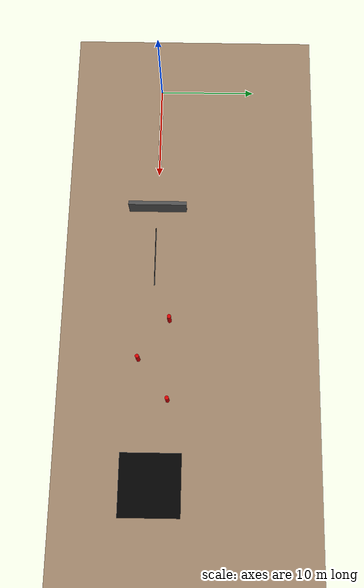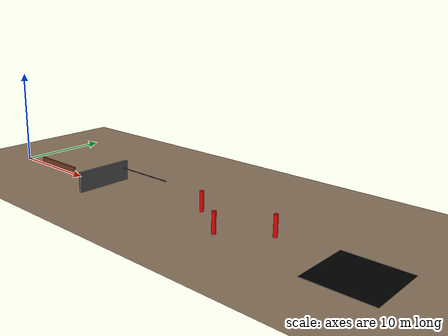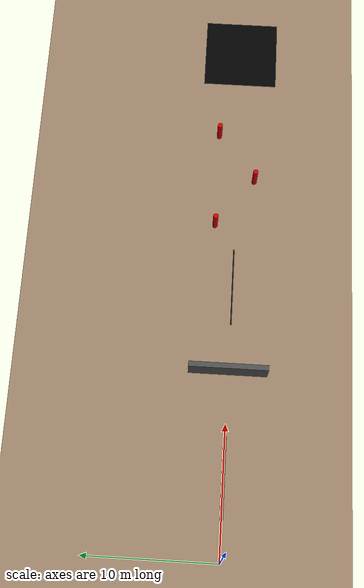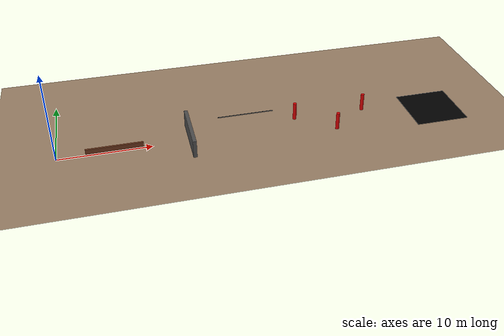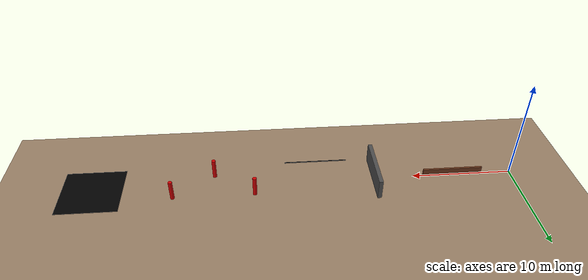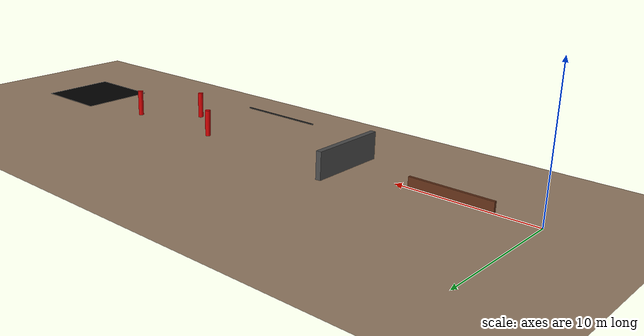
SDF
<sdf version="1.8">
 <world name="monde_binome">
  <physics name="4ms" type="ignored">
   <max_step_size>0.004</max_step_size>
   <real_time_factor>1.0</real_time_factor>
  </physics>
  <plugin filename="gz-sim-physics-system" name="gz::sim::systems::Physics"/>
  <plugin filename="gz-sim-user-commands-system" name="gz::sim::systems::UserCommands"/>
  <plugin filename="gz-sim-scene-broadcaster-system" name="gz::sim::systems::SceneBroadcaster"/>
  <plugin filename="gz-sim-sensors-system" name="gz::sim::systems::Sensors">
   <render_engine>ogre</render_engine>
  </plugin>
  <light type="directional" name="sun">
   <cast_shadows>false</cast_shadows>
   <pose>0 0 10 0 0 0</pose>
   <direction>-0.5 0.1 -0.9</direction>
  </light>
  <model name="ground_plane">
   <static>true</static>
   <link name="link">
    <collision name="collision">
     <geometry><plane><normal>0 0 1</normal><size>200 200</size></plane></geometry>
    </collision>
    <visual name="visual">
     <geometry><plane><normal>0 0 1</normal><size>200 200</size></plane></geometry>
     <material><ambient>0.6 0.5 0.4 1</ambient><diffuse>0.6 0.5 0.4 1</diffuse></material>
    </visual>
   </link>
  </model>
  <model name="poutre_equilibre">
   <static>true</static>
   <pose>6 0 0.4 0 0 0</pose>
   <link name="link">
    <visual name="v">
     <geometry><box><size>6 0.2 0.8</size></box></geometry>
     <material><ambient>0.4 0.2 0.1 1</ambient><diffuse>0.4 0.2 0.1 1</diffuse></material>
    </visual>
    <collision name="c"><geometry><box><size>6 0.2 0.8</size></box></geometry></collision>
   </link>
  </model>
  <model name="mur_2m">
   <static>true</static>
   <pose>14 0 1 0 0 0</pose>
   <link name="link">
    <visual name="v">
     <geometry><box><size>0.4 6 2</size></box></geometry>
     <material><ambient>0.3 0.3 0.3 1</ambient><diffuse>0.3 0.3 0.3 1</diffuse></material>
    </visual>
    <collision name="c"><geometry><box><size>0.4 6 2</size></box></geometry></collision>
   </link>
  </model>
  <model name="barre_haute_1">
   <static>true</static>
   <pose>20 0 2.5 0 1.57 0</pose>
   <link name="link">
    <visual name="v">
     <geometry><cylinder><radius>0.05</radius><length>6</length></cylinder></geometry>
     <material><ambient>0.1 0.1 0.1 1</ambient><diffuse>0.1 0.1 0.1 1</diffuse></material>
    </visual>
    <collision name="c">
     <geometry><cylinder><radius>0.05</radius><length>6</length></cylinder></geometry>
    </collision>
   </link>
  </model>
  <model name="plot_1">
   <static>true</static>
   <pose>26 1.5 1 0 0 0</pose>
   <link name="l">
    <visual name="v">
     <geometry><cylinder><radius>0.2</radius><length>2</length></cylinder></geometry>
     <material><ambient>0.8 0 0 1</ambient><diffuse>0.8 0 0 1</diffuse></material>
    </visual>
    <collision name="c">
     <geometry><cylinder><radius>0.2</radius><length>2</length></cylinder></geometry>
    </collision>
   </link>
  </model>
  <model name="plot_2">
   <static>true</static>
   <pose>30 -1.5 1 0 0 0</pose>
   <link name="l">
    <visual name="v">
     <geometry><cylinder><radius>0.2</radius><length>2</length></cylinder></geometry>
     <material><ambient>0.8 0 0 1</ambient><diffuse>0.8 0 0 1</diffuse></material>
    </visual>
    <collision name="c">
     <geometry><cylinder><radius>0.2</radius><length>2</length></cylinder></geometry>
    </collision>
   </link>
  </model>
  <model name="plot_3">
   <static>true</static>
   <pose>34 1.5 1 0 0 0</pose>
   <link name="l">
    <visual name="v">
     <geometry><cylinder><radius>0.2</radius><length>2</length></cylinder></geometry>
     <material><ambient>0.8 0 0 1</ambient><diffuse>0.8 0 0 1</diffuse></material>
    </visual>
    <collision name="c">
     <geometry><cylinder><radius>0.2</radius><length>2</length></cylinder></geometry>
    </collision>
   </link>
  </model>
  <model name="la_fosse">
   <static>true</static>
   <pose>42 0 0.01 0 0 0</pose>
   <link name="link">
    <visual name="v">
     <geometry><box><size>6 6 0.02</size></box></geometry>
     <material><ambient>0.1 0.1 0.1 1</ambient><diffuse>0 0 0 1</diffuse></material>
    </visual>
   </link>
  </model>
 </world>
</sdf>
